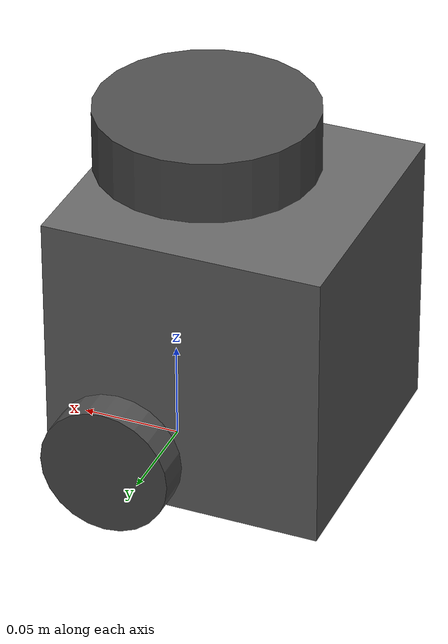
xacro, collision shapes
<?xml version="1.0" ?>
<robot name="turtlebot3_burger" xmlns:xacro="http://ros.org/wiki/xacro">

  <!-- Init colour -->
  <material name="black">
      <color rgba="0.0 0.0 0.0 1.0"/>
  </material>

  <material name="dark">
    <color rgba="0.3 0.3 0.3 1.0"/>
  </material>

  <material name="light_black">
    <color rgba="0.4 0.4 0.4 1.0"/>
  </material>

  <material name="blue">
    <color rgba="0.0 0.0 0.8 1.0"/>
  </material>

  <material name="green">
    <color rgba="0.0 0.8 0.0 1.0"/>
  </material>

  <material name="grey">
    <color rgba="0.5 0.5 0.5 1.0"/>
  </material>

  <material name="orange">
    <color rgba="1.0 0.4235 0.0392 1.0"/>
  </material>

  <material name="brown">
    <color rgba="0.8706 0.8118 0.7647 1.0"/>
  </material>

  <material name="red">
    <color rgba="0.8 0.0 0.0 1.0"/>
  </material>

  <material name="white">
    <color rgba="1.0 1.0 1.0 1.0"/>
  </material>

  <link name="base_footprint"/>

  <joint name="base_joint" type="fixed">
    <parent link="base_footprint"/>
    <child link="base_link"/>
    <origin xyz="0.0 0.0 0.010" rpy="0 0 0"/>
  </joint>

  <link name="base_link">
    <visual>
      <origin xyz="-0.032 0 0.0" rpy="0 0 0"/>
      <geometry>
        <mesh filename="file://$(find ee4308_bringup)/models/turtlebot3_burger/meshes/burger_base.dae" scale="0.001 0.001 0.001"/>
      </geometry>
      <material name="light_black"/>
    </visual>

    <collision>
      <origin xyz="-0.032 0 0.070" rpy="0 0 0"/>
      <geometry>
        <box size="0.140 0.140 0.143"/>
      </geometry>
    </collision>

    <inertial>
      <origin xyz="0 0 0" rpy="0 0 0"/>
      <mass value="8.2573504e-01"/>
      <inertia ixx="2.2124416e-03" ixy="-1.2294101e-05" ixz="3.4938785e-05" iyy="2.1193702e-03" iyz="-5.0120904e-06" izz="2.0064271e-03" />
    </inertial>
  </link>

  <joint name="wheel_left_joint" type="continuous">
    <parent link="base_link"/>
    <child link="wheel_left_link"/>
    <origin xyz="0.0 0.08 0.023" rpy="-1.57 0 0"/>
    <axis xyz="0 0 1"/>
  </joint>

  <link name="wheel_left_link">
    <visual>
      <origin xyz="0 0 0" rpy="1.57 0 0"/>
      <geometry>
        <mesh filename="file://$(find ee4308_bringup)/models/turtlebot3_burger/meshes/tire.dae" scale="0.001 0.001 0.001"/>
      </geometry>
      <material name="dark"/>
    </visual>

    <collision>
      <origin xyz="0 0 0" rpy="0 0 0"/>
      <geometry>
        <cylinder length="0.018" radius="0.033"/>
      </geometry>
    </collision>

    <inertial>
      <origin xyz="0 0 0" />
      <mass value="2.8498940e-02" />
      <inertia ixx="1.1175580e-05" ixy="-4.2369783e-11" ixz="-5.9381719e-09" iyy="1.1192413e-05" iyz="-1.4400107e-11" izz="2.0712558e-05" />
    </inertial>
  </link>

  <joint name="wheel_right_joint" type="continuous">
    <parent link="base_link"/>
    <child link="wheel_right_link"/>
    <origin xyz="0.0 -0.080 0.023" rpy="-1.57 0 0"/>
    <axis xyz="0 0 1"/>
  </joint>

  <link name="wheel_right_link">
    <visual>
      <origin xyz="0 0 0" rpy="1.57 0 0"/>
      <geometry>
        <mesh filename="file://$(find ee4308_bringup)/models/turtlebot3_burger/meshes/tire.dae" scale="0.001 0.001 0.001"/>
      </geometry>
      <material name="dark"/>
    </visual>

    <collision>
      <origin xyz="0 0 0" rpy="0 0 0"/>
      <geometry>
        <cylinder length="0.018" radius="0.033"/>
      </geometry>
    </collision>

    <inertial>
      <origin xyz="0 0 0" />
      <mass value="2.8498940e-02" />
      <inertia ixx="1.1175580e-05" ixy="-4.2369783e-11" ixz="-5.9381719e-09" iyy="1.1192413e-05" iyz="-1.4400107e-11" izz="2.0712558e-05" />
    </inertial>
  </link>

  <joint name="caster_back_joint" type="fixed">
    <parent link="base_link"/>
    <child link="caster_back_link"/>
    <origin xyz="-0.081 0 -0.004" rpy="-1.57 0 0"/>
  </joint>

  <link name="caster_back_link">
    <collision>
      <origin xyz="0 0.001 0" rpy="0 0 0"/>
      <geometry>
        <box size="0.030 0.009 0.020"/>
      </geometry>
    </collision>
    <inertial>
      <origin xyz="0 0 0" />
      <mass value="0.005" />
      <inertia ixx="0.001" ixy="0.0" ixz="0.0" iyy="0.001" iyz="0.0" izz="0.001" />
    </inertial>
  </link>

  <joint name="imu_joint" type="fixed">
    <parent link="base_link"/>
    <child link="imu_link"/>
    <origin xyz="-0.032 0 0.068" rpy="0 0 0"/>
  </joint>

  <link name="imu_link"/>

  <joint name="scan_joint" type="fixed">
    <parent link="base_link"/>
    <child link="base_scan"/>
    <origin xyz="-0.032 0 0.172" rpy="0 0 0"/>
  </joint>

  <link name="base_scan">
    <visual>
      <origin xyz="0 0 0.0" rpy="0 0 0"/>
      <geometry>
        <mesh filename="file://$(find ee4308_bringup)/models/turtlebot3_burger/meshes/lds.dae" scale="0.001 0.001 0.001"/>
      </geometry>
      <material name="dark"/>
    </visual>

    <collision>
      <origin xyz="0.015 0 -0.0065" rpy="0 0 0"/>
      <geometry>
        <cylinder length="0.0315" radius="0.055"/>
      </geometry>
    </collision>

    <inertial>
      <mass value="0.114" />
      <origin xyz="0 0 0" />
      <inertia ixx="0.001" ixy="0.0" ixz="0.0" iyy="0.001" iyz="0.0" izz="0.001" />
    </inertial>
  </link>

  <!-- gazebo plugins -->
  <gazebo reference="wheel_left_link">
    <mu>100000.0</mu>
    <mu2>100000.0</mu2>
    <fdir1>0 0 0</fdir1>
    <kp>1e+5</kp>
    <kd>1</kd>
    <maxVel>0.01</maxVel>
    <minDepth>0.001</minDepth>
  </gazebo>
  <gazebo reference="wheel_right_link">
    <mu>100000.0</mu>
    <mu2>100000.0</mu2>
    <fdir1>0 0 0</fdir1>
    <kp>1e+5</kp>
    <kd>1</kd>
    <maxVel>0.01</maxVel>
    <minDepth>0.001</minDepth>
  </gazebo>
  <gazebo reference="caster_back_link">
    <kp>1e+5</kp>
    <kd>1</kd>
    <maxVel>0.01</maxVel>
    <minDepth>0.001</minDepth>
  </gazebo>

  <gazebo reference="imu_link">
    <sensor name='sensor_imu' type='imu'>
      <always_on> 1 </always_on>
      <visualize>1</visualize>
      <update_rate> 100 </update_rate>
      <imu>
        <angular_velocity>
          <x>
            <noise type="gaussian">
              <mean>0.0</mean>
              <stddev>2e-4</stddev>
            </noise>
          </x>
          <y>
            <noise type="gaussian">
              <mean>0.0</mean>
              <stddev>2e-4</stddev>
            </noise>
          </y>
          <z>
            <noise type="gaussian">
              <mean>0.0</mean>
              <stddev>2e-4</stddev>
            </noise>
          </z>
        </angular_velocity>
        <linear_acceleration>
          <x>
            <noise type="gaussian">
              <mean>0.0</mean>
              <stddev>1.7e-2</stddev>
            </noise>
          </x>
          <y>
            <noise type="gaussian">
              <mean>0.0</mean>
              <stddev>1.7e-2</stddev>
            </noise>
          </y>
          <z>
            <noise type="gaussian">
              <mean>0.0</mean>
              <stddev>1.7e-2</stddev>
            </noise>
          </z>
        </linear_acceleration>
      </imu>
      <plugin name='imu' filename='libgazebo_ros_imu_sensor.so'>
        <ros>
          <namespace>/turtle</namespace>
          <remapping>~/out:=imu</remapping>
        </ros>
        <initial_orientation_as_reference>false</initial_orientation_as_reference>
        <frame_name>turtle/base_link</frame_name>
      </plugin>
    </sensor>
  </gazebo>

  <gazebo reference="base_scan">
    <sensor name="hls_lfcd_lds" type="ray">
      <always_on>true</always_on>
      <visualize>true</visualize>
      <pose>-0.032 0 0.171 0 0 0</pose>
      <update_rate>5</update_rate>
      <ray>
        <scan>
          <horizontal>
            <samples>360</samples>
            <resolution>1.000000</resolution>
            <min_angle>0.000000</min_angle>
            <max_angle>6.280000</max_angle>
          </horizontal>
        </scan>
        <range>
          <min>0.120000</min>
          <max>3.5</max>
          <resolution>0.015000</resolution>
        </range>
        <noise>
          <type>gaussian</type>
          <mean>0.0</mean>
          <stddev>0.01</stddev>
        </noise>
      </ray>
      <plugin name="scan" filename="libgazebo_ros_ray_sensor.so">
        <ros>
          <namespace>/turtle</namespace>
          <remapping>~/out:=scan</remapping>
        </ros>
        <output_type>sensor_msgs/LaserScan</output_type>
        <frame_name>turtle/base_scan</frame_name>
      </plugin>
    </sensor>
  </gazebo>

  <gazebo>
    <plugin name="diff_drive" filename="libgazebo_ros_diff_drive.so">
      <ros>
        <namespace>/turtle</namespace>
        <!-- plugin does not support publishing tf of wheel joints correctly with tf-prefix. -->
      </ros>

      <update_rate>30</update_rate>

      <!-- wheels -->
      <left_joint>wheel_left_joint</left_joint>
      <right_joint>wheel_right_joint</right_joint>

      <!-- kinematics -->
      <wheel_separation>0.160</wheel_separation>
      <wheel_diameter>0.066</wheel_diameter>

      <!-- limits -->
      <max_wheel_torque>20</max_wheel_torque>
      <max_wheel_acceleration>1.0</max_wheel_acceleration>

      <!-- output -->
      <publish_odom>1</publish_odom>
      <publish_odom_tf>1</publish_odom_tf>
      <publish_wheel_tf>1</publish_wheel_tf>

      <odometry_frame>/turtle/odom</odometry_frame>
      <robot_base_frame>/turtle/base_footprint</robot_base_frame>
    </plugin>

    <plugin name="joint_state" filename="libgazebo_ros_joint_state_publisher.so">
      <ros>
        <namespace>/turtle</namespace>
        <remapping>~/out:=joint_states</remapping>
      </ros>
      <update_rate>30</update_rate>
      <joint_name>wheel_left_joint</joint_name>
      <joint_name>wheel_right_joint</joint_name>
    </plugin>
  </gazebo>

</robot>
